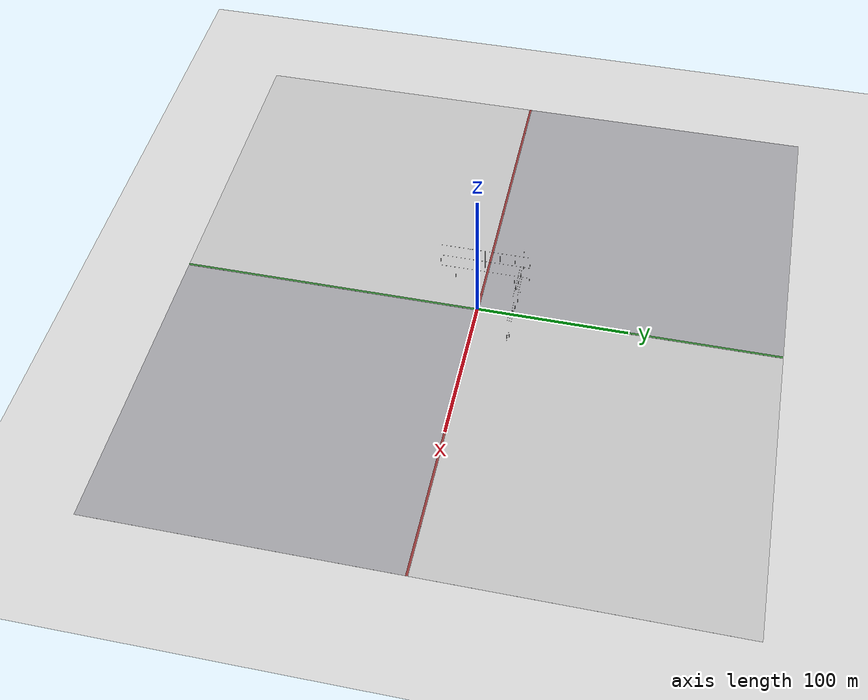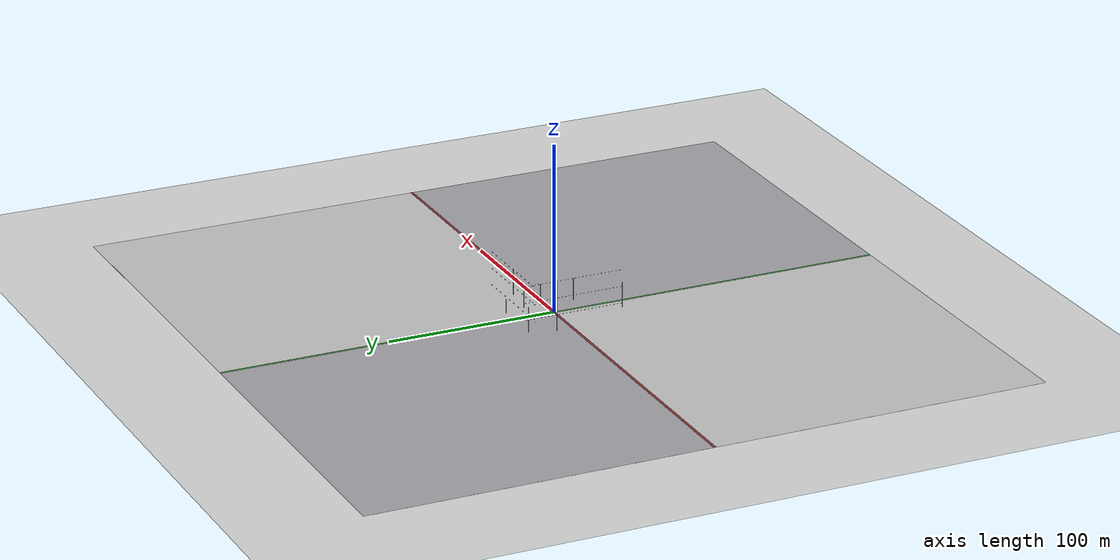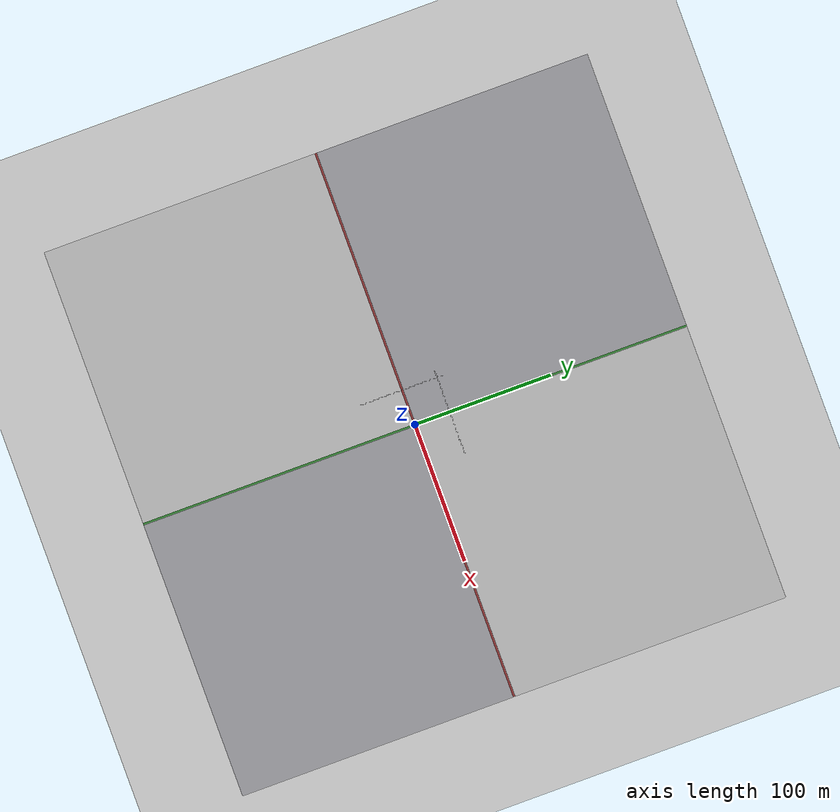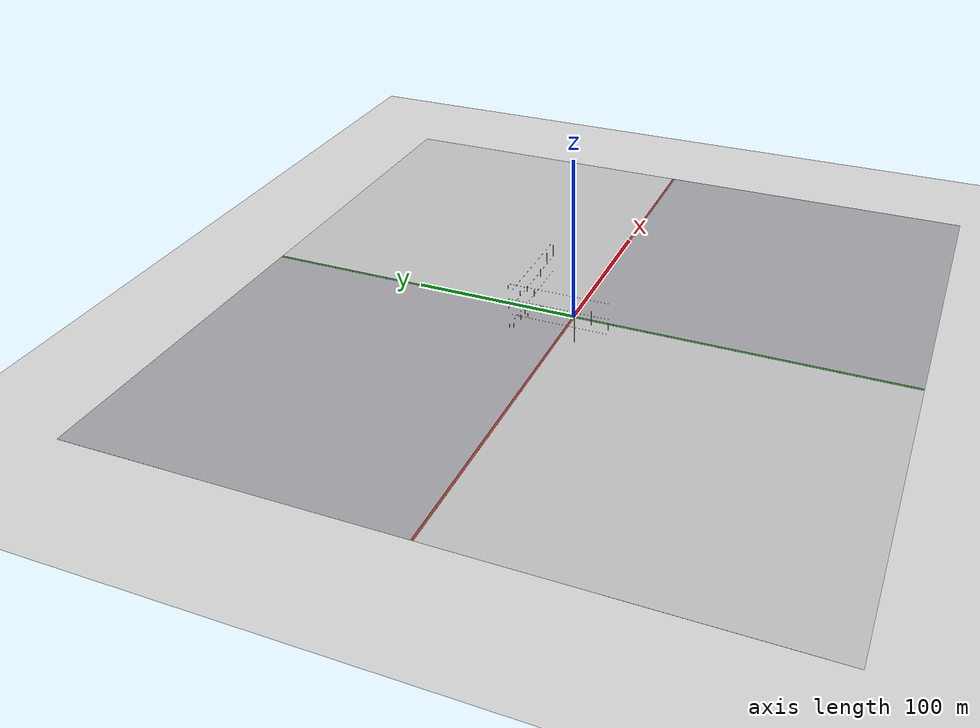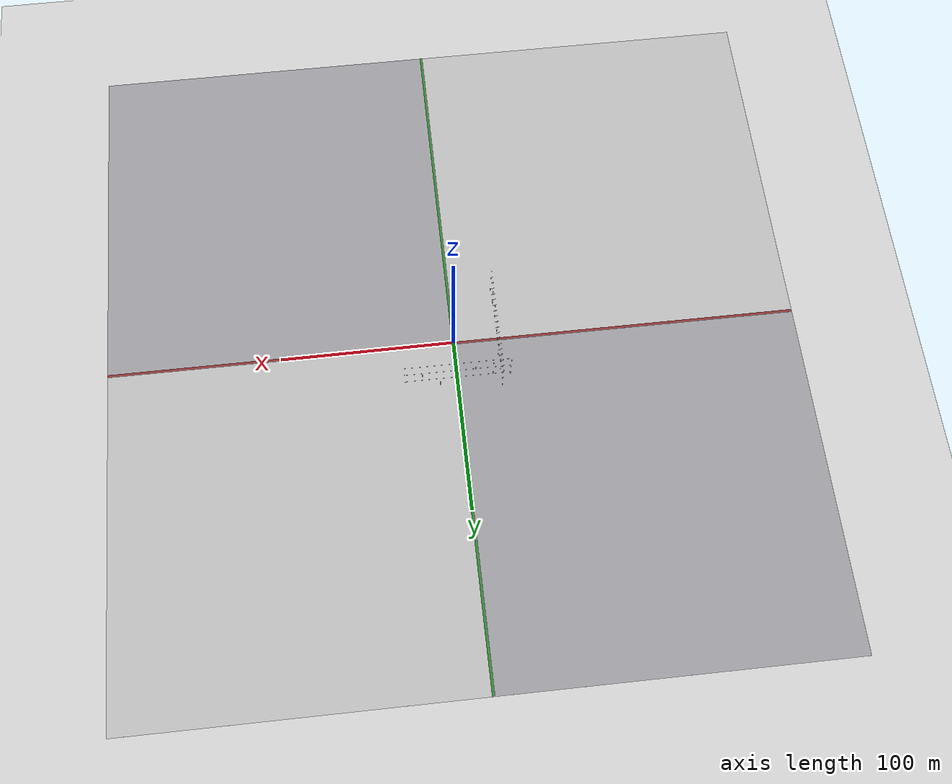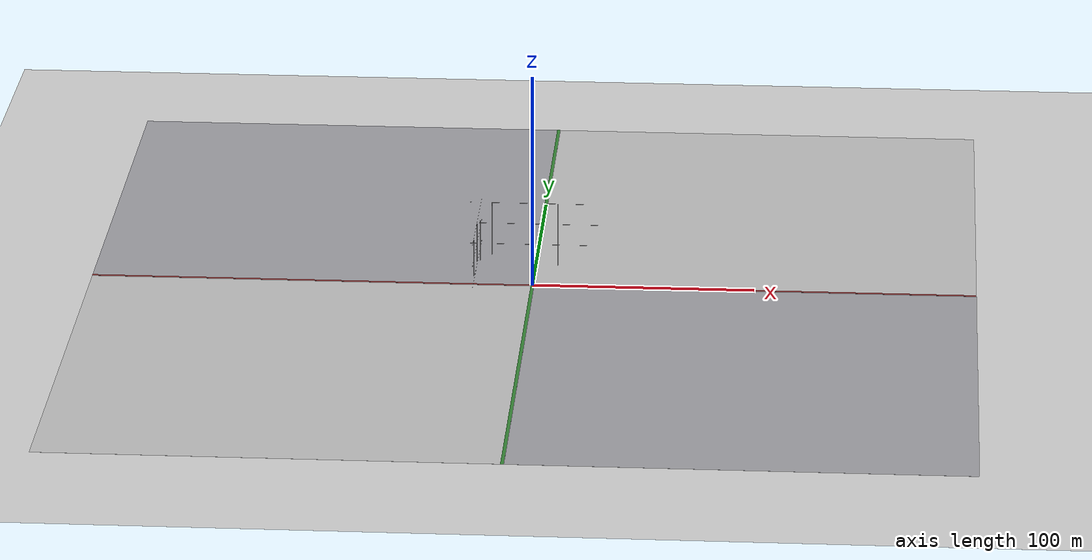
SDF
<?xml version="1.0" encoding="UTF-8"?>
<!--
  Lighter-than-air development world: buoyant air for airships.
-->
<sdf version="1.9">
  <world name="lta">
    <physics type="ode">
      <max_step_size>0.004</max_step_size>
      <real_time_factor>1.0</real_time_factor>
      <real_time_update_rate>250</real_time_update_rate>
    </physics>
    <gravity>0 0 -9.8</gravity>
    <magnetic_field>6e-06 2.3e-05 -4.2e-05</magnetic_field>
    <atmosphere type="adiabatic"/>
    <scene>
      <grid>true</grid>
      <ambient>0.4 0.4 0.4 1</ambient>
      <background>0.7 0.7 0.7 1</background>
      <shadows>true</shadows>
    </scene>
    <gui fullscreen="false">
      <plugin filename="MinimalScene" name="3D View">
        <gz-gui>
          <title>3D View</title>
          <property type="bool" key="showTitleBar">false</property>
          <property type="string" key="state">docked</property>
        </gz-gui>
        <engine>ogre2</engine>
        <scene>scene</scene>
        <ambient_light>0.4 0.4 0.4</ambient_light>
        <background_color>0.8 0.8 0.8</background_color>
        <camera_pose>-22 -22 14 0 0.35 0.785</camera_pose>
        <camera_clip>
          <near>0.25</near>
          <far>25000</far>
        </camera_clip>
      </plugin>
      <plugin filename="EntityContextMenuPlugin" name="Entity context menu">
        <gz-gui>
          <property key="state" type="string">floating</property>
          <property key="width" type="double">5</property>
          <property key="height" type="double">5</property>
          <property key="showTitleBar" type="bool">false</property>
        </gz-gui>
      </plugin>
      <plugin filename="GzSceneManager" name="Scene Manager">
        <gz-gui>
          <property key="resizable" type="bool">false</property>
          <property key="width" type="double">5</property>
          <property key="height" type="double">5</property>
          <property key="state" type="string">floating</property>
          <property key="showTitleBar" type="bool">false</property>
        </gz-gui>
      </plugin>
      <plugin filename="InteractiveViewControl" name="Interactive view control">
        <gz-gui>
          <property key="resizable" type="bool">false</property>
          <property key="width" type="double">5</property>
          <property key="height" type="double">5</property>
          <property key="state" type="string">floating</property>
          <property key="showTitleBar" type="bool">false</property>
        </gz-gui>
      </plugin>
      <plugin filename="CameraTracking" name="Camera Tracking">
        <gz-gui>
          <property key="resizable" type="bool">false</property>
          <property key="width" type="double">5</property>
          <property key="height" type="double">5</property>
          <property key="state" type="string">floating</property>
          <property key="showTitleBar" type="bool">false</property>
        </gz-gui>
      </plugin>
      <plugin filename="MarkerManager" name="Marker manager">
        <gz-gui>
          <property key="resizable" type="bool">false</property>
          <property key="width" type="double">5</property>
          <property key="height" type="double">5</property>
          <property key="state" type="string">floating</property>
          <property key="showTitleBar" type="bool">false</property>
        </gz-gui>
      </plugin>
      <plugin filename="SelectEntities" name="Select Entities">
        <gz-gui>
          <anchors target="Select entities">
            <line own="right" target="right"/>
            <line own="top" target="top"/>
          </anchors>
          <property key="resizable" type="bool">false</property>
          <property key="width" type="double">5</property>
          <property key="height" type="double">5</property>
          <property key="state" type="string">floating</property>
          <property key="showTitleBar" type="bool">false</property>
        </gz-gui>
      </plugin>
      <plugin filename="VisualizationCapabilities" name="Visualization Capabilities">
        <gz-gui>
          <property key="resizable" type="bool">false</property>
          <property key="width" type="double">5</property>
          <property key="height" type="double">5</property>
          <property key="state" type="string">floating</property>
          <property key="showTitleBar" type="bool">false</property>
        </gz-gui>
      </plugin>
      <plugin filename="Spawn" name="Spawn Entities">
        <gz-gui>
          <anchors target="Select entities">
            <line own="right" target="right"/>
            <line own="top" target="top"/>
          </anchors>
          <property key="resizable" type="bool">false</property>
          <property key="width" type="double">5</property>
          <property key="height" type="double">5</property>
          <property key="state" type="string">floating</property>
          <property key="showTitleBar" type="bool">false</property>
        </gz-gui>
      </plugin>
      <plugin name="World control" filename="WorldControl">
        <gz-gui>
          <title>World control</title>
          <property type="bool" key="showTitleBar">0</property>
          <property type="bool" key="resizable">0</property>
          <property type="double" key="height">72</property>
          <property type="double" key="width">121</property>
          <property type="double" key="z">1</property>
          <property type="string" key="state">floating</property>
          <anchors target="3D View">
            <line own="left" target="left"/>
            <line own="bottom" target="bottom"/>
          </anchors>
        </gz-gui>
        <play_pause>1</play_pause>
        <step>1</step>
        <start_paused>1</start_paused>
      </plugin>
      <plugin name="World stats" filename="WorldStats">
        <gz-gui>
          <title>World stats</title>
          <property type="bool" key="showTitleBar">0</property>
          <property type="bool" key="resizable">0</property>
          <property type="double" key="height">110</property>
          <property type="double" key="width">290</property>
          <property type="double" key="z">1</property>
          <property type="string" key="state">floating</property>
          <anchors target="3D View">
            <line own="right" target="right"/>
            <line own="bottom" target="bottom"/>
          </anchors>
        </gz-gui>
        <sim_time>1</sim_time>
        <real_time>1</real_time>
        <real_time_factor>1</real_time_factor>
        <iterations>1</iterations>
      </plugin>
      <plugin name="Entity tree" filename="EntityTree"/>
    </gui>
    <!-- Declaring any world plugin replaces the entire default system list,
         so the full stack is spelled out (same pattern as underwater.sdf). -->
    <plugin name="gz::sim::systems::Physics" filename="gz-sim-physics-system"/>
    <plugin name="gz::sim::systems::UserCommands" filename="gz-sim-user-commands-system"/>
    <plugin name="gz::sim::systems::SceneBroadcaster" filename="gz-sim-scene-broadcaster-system"/>
    <plugin name="gz::sim::systems::Contact" filename="gz-sim-contact-system"/>
    <plugin name="gz::sim::systems::Imu" filename="gz-sim-imu-system"/>
    <plugin name="gz::sim::systems::AirPressure" filename="gz-sim-air-pressure-system"/>
    <plugin name="gz::sim::systems::AirSpeed" filename="gz-sim-air-speed-system"/>
    <plugin name="gz::sim::systems::Magnetometer" filename="gz-sim-magnetometer-system"/>
    <plugin name="gz::sim::systems::NavSat" filename="gz-sim-navsat-system"/>
    <plugin name="gz::sim::systems::ApplyLinkWrench" filename="gz-sim-apply-link-wrench-system"/>
    <plugin name="gz::sim::systems::Sensors" filename="gz-sim-sensors-system">
      <render_engine>ogre2</render_engine>
    </plugin>
    <!-- Buoyancy on the enabled links' collision volumes; PX4 spawns model
         instances with a _0 suffix. -->
    <plugin filename="gz-sim-buoyancy-system" name="gz::sim::systems::Buoyancy">
      <uniform_fluid_density>1.225</uniform_fluid_density>
      <enable>airship_vectored_independent::base_link</enable>
      <enable>airship_vectored_independent_0::base_link</enable>
      <enable>airship_vectored_independent_aero::base_link</enable>
      <enable>airship_vectored_independent_aero_0::base_link</enable>
    </plugin>
    <model name="ground_plane">
      <static>true</static>
      <link name="link">
        <collision name="collision">
          <geometry>
            <plane>
              <normal>0 0 1</normal>
              <size>1 1</size>
            </plane>
          </geometry>
          <surface>
            <friction>
              <ode/>
            </friction>
            <bounce/>
            <contact/>
          </surface>
        </collision>
        <visual name="visual">
          <geometry>
            <plane>
              <normal>0 0 1</normal>
              <size>500 500</size>
            </plane>
          </geometry>
          <material>
            <ambient>0.8 0.8 0.8 1</ambient>
            <diffuse>0.8 0.8 0.8 1</diffuse>
            <specular>0.8 0.8 0.8 1</specular>
          </material>
        </visual>
        <pose>0 0 0 0 -0 0</pose>
      </link>
      <pose>0 0 0 0 -0 0</pose>
      <self_collide>false</self_collide>
    </model>
    <!-- Visual-only aids for judging an airship pose by eye; both are
         static and neither has collision, so a headless run is unaffected. -->
    <include>
      <uri>model://ground_markers</uri>
    </include>
    <include>
      <uri>model://flight_grid</uri>
    </include>
    <light name="sunUTC" type="directional">
      <pose>0 0 500 0 -0 0</pose>
      <cast_shadows>true</cast_shadows>
      <intensity>1</intensity>
      <direction>0.001 0.625 -0.78</direction>
      <diffuse>0.904 0.904 0.904 1</diffuse>
      <specular>0.271 0.271 0.271 1</specular>
      <attenuation>
        <range>2000</range>
        <linear>0</linear>
        <constant>1</constant>
        <quadratic>0</quadratic>
      </attenuation>
      <spot>
        <inner_angle>0</inner_angle>
        <outer_angle>0</outer_angle>
        <falloff>0</falloff>
      </spot>
    </light>
    <spherical_coordinates>
      <surface_model>EARTH_WGS84</surface_model>
      <world_frame_orientation>ENU</world_frame_orientation>
      <latitude_deg>47.397971057728974</latitude_deg>
      <longitude_deg> 8.546163739800146</longitude_deg>
      <elevation>0</elevation>
    </spherical_coordinates>
  </world>
</sdf>

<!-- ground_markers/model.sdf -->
<!-- Visual-only ground markers: red = +x, green = +y, 200 m quadrant tiles. -->
<sdf version="1.10">
<model name="ground_markers">
  <static>true</static>
  <link name="link">
    <visual name="quadrant_pp">
      <cast_shadows>false</cast_shadows>
      <pose>100 100 0.01 0 0 0</pose>
      <geometry><box><size>200 200 0.02</size></box></geometry>
      <material>
        <ambient>0.72 0.72 0.72 1</ambient>
        <diffuse>0.72 0.72 0.72 1</diffuse>
      </material>
    </visual>
    <visual name="quadrant_nn">
      <cast_shadows>false</cast_shadows>
      <pose>-100 -100 0.01 0 0 0</pose>
      <geometry><box><size>200 200 0.02</size></box></geometry>
      <material>
        <ambient>0.72 0.72 0.72 1</ambient>
        <diffuse>0.72 0.72 0.72 1</diffuse>
      </material>
    </visual>
    <visual name="quadrant_pn">
      <cast_shadows>false</cast_shadows>
      <pose>100 -100 0.01 0 0 0</pose>
      <geometry><box><size>200 200 0.02</size></box></geometry>
      <material>
        <ambient>0.6 0.6 0.62 1</ambient>
        <diffuse>0.6 0.6 0.62 1</diffuse>
      </material>
    </visual>
    <visual name="quadrant_np">
      <cast_shadows>false</cast_shadows>
      <pose>-100 100 0.01 0 0 0</pose>
      <geometry><box><size>200 200 0.02</size></box></geometry>
      <material>
        <ambient>0.6 0.6 0.62 1</ambient>
        <diffuse>0.6 0.6 0.62 1</diffuse>
      </material>
    </visual>
    <visual name="axis_x_red">
      <cast_shadows>false</cast_shadows>
      <pose>0 0 0.03 0 0 0</pose>
      <geometry><box><size>400 1.5 0.02</size></box></geometry>
      <material>
        <ambient>0.55 0.2 0.2 1</ambient>
        <diffuse>0.55 0.2 0.2 1</diffuse>
      </material>
    </visual>
    <visual name="axis_y_green">
      <cast_shadows>false</cast_shadows>
      <pose>0 0 0.03 0 0 0</pose>
      <geometry><box><size>1.5 400 0.02</size></box></geometry>
      <material>
        <ambient>0.2 0.5 0.2 1</ambient>
        <diffuse>0.2 0.5 0.2 1</diffuse>
      </material>
    </visual>
  </link>
</model>
</sdf>

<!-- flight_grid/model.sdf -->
<!-- Visual-only 3D reference: blue z-axis mast (rungs at 5/10/15 m) and
     two 10 m-cell wall grids behind the broadside and bow views. -->
<sdf version="1.10">
<model name="flight_grid">
  <static>true</static>
  <link name="link">
    <visual name="mast_z_blue">
      <cast_shadows>false</cast_shadows>
      <pose>0 0 10 0 0 0</pose>
      <geometry><box><size>0.08 0.08 20</size></box></geometry>
      <material>
        <ambient>0.2 0.3 0.6 1</ambient>
        <diffuse>0.2 0.3 0.6 1</diffuse>
      </material>
    </visual>
    <visual name="mast_rung_5">
      <cast_shadows>false</cast_shadows>
      <pose>0 0 5 0 0 0</pose>
      <geometry><box><size>1.0 0.08 0.08</size></box></geometry>
      <material>
        <ambient>0.9 0.9 0.9 1</ambient>
        <diffuse>0.9 0.9 0.9 1</diffuse>
      </material>
    </visual>
    <visual name="mast_rung_10">
      <cast_shadows>false</cast_shadows>
      <pose>0 0 10 0 0 0</pose>
      <geometry><box><size>1.0 0.08 0.08</size></box></geometry>
      <material>
        <ambient>0.9 0.9 0.9 1</ambient>
        <diffuse>0.9 0.9 0.9 1</diffuse>
      </material>
    </visual>
    <visual name="mast_rung_15">
      <cast_shadows>false</cast_shadows>
      <pose>0 0 15 0 0 0</pose>
      <geometry><box><size>1.0 0.08 0.08</size></box></geometry>
      <material>
        <ambient>0.9 0.9 0.9 1</ambient>
        <diffuse>0.9 0.9 0.9 1</diffuse>
      </material>
    </visual>
    <visual name="wall_y_v_xm30">
      <cast_shadows>false</cast_shadows>
      <pose>-30 25 15 0 0 0</pose>
      <geometry><box><size>0.06 0.06 30</size></box></geometry>
      <material>
        <ambient>0.5 0.5 0.5 1</ambient>
        <diffuse>0.5 0.5 0.5 1</diffuse>
      </material>
    </visual>
    <visual name="wall_y_v_xm20">
      <cast_shadows>false</cast_shadows>
      <pose>-20 25 15 0 0 0</pose>
      <geometry><box><size>0.06 0.06 30</size></box></geometry>
      <material>
        <ambient>0.5 0.5 0.5 1</ambient>
        <diffuse>0.5 0.5 0.5 1</diffuse>
      </material>
    </visual>
    <visual name="wall_y_v_xm10">
      <cast_shadows>false</cast_shadows>
      <pose>-10 25 15 0 0 0</pose>
      <geometry><box><size>0.06 0.06 30</size></box></geometry>
      <material>
        <ambient>0.5 0.5 0.5 1</ambient>
        <diffuse>0.5 0.5 0.5 1</diffuse>
      </material>
    </visual>
    <visual name="wall_y_v_x0">
      <cast_shadows>false</cast_shadows>
      <pose>0 25 15 0 0 0</pose>
      <geometry><box><size>0.06 0.06 30</size></box></geometry>
      <material>
        <ambient>0.3 0.3 0.3 1</ambient>
        <diffuse>0.3 0.3 0.3 1</diffuse>
      </material>
    </visual>
    <visual name="wall_y_v_xp10">
      <cast_shadows>false</cast_shadows>
      <pose>10 25 15 0 0 0</pose>
      <geometry><box><size>0.06 0.06 30</size></box></geometry>
      <material>
        <ambient>0.5 0.5 0.5 1</ambient>
        <diffuse>0.5 0.5 0.5 1</diffuse>
      </material>
    </visual>
    <visual name="wall_y_v_xp20">
      <cast_shadows>false</cast_shadows>
      <pose>20 25 15 0 0 0</pose>
      <geometry><box><size>0.06 0.06 30</size></box></geometry>
      <material>
        <ambient>0.5 0.5 0.5 1</ambient>
        <diffuse>0.5 0.5 0.5 1</diffuse>
      </material>
    </visual>
    <visual name="wall_y_v_xp30">
      <cast_shadows>false</cast_shadows>
      <pose>30 25 15 0 0 0</pose>
      <geometry><box><size>0.06 0.06 30</size></box></geometry>
      <material>
        <ambient>0.5 0.5 0.5 1</ambient>
        <diffuse>0.5 0.5 0.5 1</diffuse>
      </material>
    </visual>
    <visual name="wall_y_h_z10">
      <cast_shadows>false</cast_shadows>
      <pose>0 25 10 0 0 0</pose>
      <geometry><box><size>60 0.06 0.06</size></box></geometry>
      <material>
        <ambient>0.5 0.5 0.5 1</ambient>
        <diffuse>0.5 0.5 0.5 1</diffuse>
      </material>
    </visual>
    <visual name="wall_y_h_z20">
      <cast_shadows>false</cast_shadows>
      <pose>0 25 20 0 0 0</pose>
      <geometry><box><size>60 0.06 0.06</size></box></geometry>
      <material>
        <ambient>0.5 0.5 0.5 1</ambient>
        <diffuse>0.5 0.5 0.5 1</diffuse>
      </material>
    </visual>
    <visual name="wall_y_h_z30">
      <cast_shadows>false</cast_shadows>
      <pose>0 25 30 0 0 0</pose>
      <geometry><box><size>60 0.06 0.06</size></box></geometry>
      <material>
        <ambient>0.5 0.5 0.5 1</ambient>
        <diffuse>0.5 0.5 0.5 1</diffuse>
      </material>
    </visual>
    <visual name="wall_x_v_ym30">
      <cast_shadows>false</cast_shadows>
      <pose>-25 -30 15 0 0 0</pose>
      <geometry><box><size>0.06 0.06 30</size></box></geometry>
      <material>
        <ambient>0.5 0.5 0.5 1</ambient>
        <diffuse>0.5 0.5 0.5 1</diffuse>
      </material>
    </visual>
    <visual name="wall_x_v_ym20">
      <cast_shadows>false</cast_shadows>
      <pose>-25 -20 15 0 0 0</pose>
      <geometry><box><size>0.06 0.06 30</size></box></geometry>
      <material>
        <ambient>0.5 0.5 0.5 1</ambient>
        <diffuse>0.5 0.5 0.5 1</diffuse>
      </material>
    </visual>
    <visual name="wall_x_v_ym10">
      <cast_shadows>false</cast_shadows>
      <pose>-25 -10 15 0 0 0</pose>
      <geometry><box><size>0.06 0.06 30</size></box></geometry>
      <material>
        <ambient>0.5 0.5 0.5 1</ambient>
        <diffuse>0.5 0.5 0.5 1</diffuse>
      </material>
    </visual>
    <visual name="wall_x_v_y0">
      <cast_shadows>false</cast_shadows>
      <pose>-25 0 15 0 0 0</pose>
      <geometry><box><size>0.06 0.06 30</size></box></geometry>
      <material>
        <ambient>0.3 0.3 0.3 1</ambient>
        <diffuse>0.3 0.3 0.3 1</diffuse>
      </material>
    </visual>
    <visual name="wall_x_v_yp10">
      <cast_shadows>false</cast_shadows>
      <pose>-25 10 15 0 0 0</pose>
      <geometry><box><size>0.06 0.06 30</size></box></geometry>
      <material>
        <ambient>0.5 0.5 0.5 1</ambient>
        <diffuse>0.5 0.5 0.5 1</diffuse>
      </material>
    </visual>
    <visual name="wall_x_v_yp20">
      <cast_shadows>false</cast_shadows>
      <pose>-25 20 15 0 0 0</pose>
      <geometry><box><size>0.06 0.06 30</size></box></geometry>
      <material>
        <ambient>0.5 0.5 0.5 1</ambient>
        <diffuse>0.5 0.5 0.5 1</diffuse>
      </material>
    </visual>
    <visual name="wall_x_v_yp30">
      <cast_shadows>false</cast_shadows>
      <pose>-25 30 15 0 0 0</pose>
      <geometry><box><size>0.06 0.06 30</size></box></geometry>
      <material>
        <ambient>0.5 0.5 0.5 1</ambient>
        <diffuse>0.5 0.5 0.5 1</diffuse>
      </material>
    </visual>
    <visual name="wall_x_h_z10">
      <cast_shadows>false</cast_shadows>
      <pose>-25 0 10 0 0 0</pose>
      <geometry><box><size>0.06 60 0.06</size></box></geometry>
      <material>
        <ambient>0.5 0.5 0.5 1</ambient>
        <diffuse>0.5 0.5 0.5 1</diffuse>
      </material>
    </visual>
    <visual name="wall_x_h_z20">
      <cast_shadows>false</cast_shadows>
      <pose>-25 0 20 0 0 0</pose>
      <geometry><box><size>0.06 60 0.06</size></box></geometry>
      <material>
        <ambient>0.5 0.5 0.5 1</ambient>
        <diffuse>0.5 0.5 0.5 1</diffuse>
      </material>
    </visual>
    <visual name="wall_x_h_z30">
      <cast_shadows>false</cast_shadows>
      <pose>-25 0 30 0 0 0</pose>
      <geometry><box><size>0.06 60 0.06</size></box></geometry>
      <material>
        <ambient>0.5 0.5 0.5 1</ambient>
        <diffuse>0.5 0.5 0.5 1</diffuse>
      </material>
    </visual>
  </link>
</model>
</sdf>
